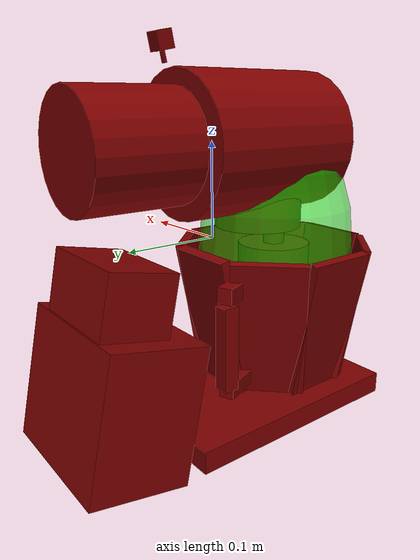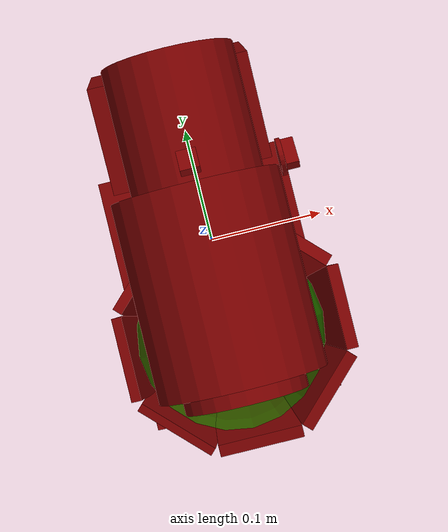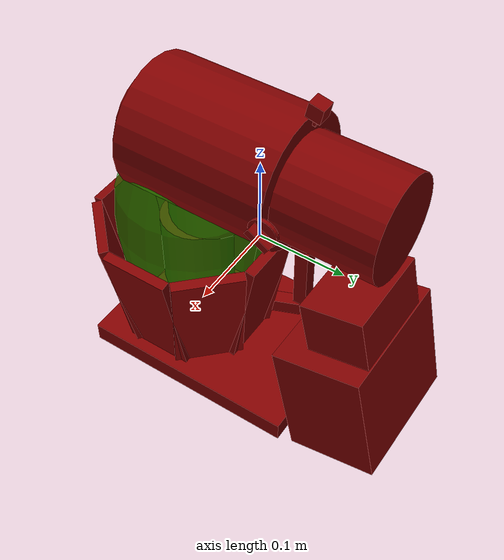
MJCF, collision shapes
<?xml version='1.0' encoding='UTF-8'?>
<mujoco model="model">
  <option timestep="0.002" gravity="0.0 0.0 -9.81"/>
  <compiler angle="radian"/>
  <asset>
    <mesh file="visuals/blender.obj" name="blender_vis"/>
    <mesh file="visuals/bowl.obj" name="bowl_vis"/>
    <mesh file="visuals/button_head_lock.obj" name="button_head_lock_vis"/>
    <mesh file="visuals/head.obj" name="head_vis"/>
    <mesh file="visuals/knob_speed.obj" name="knob_speed_vis"/>
    <mesh file="visuals/Body001.obj" name="Body001_vis"/>
    <texture file="visuals/T_BC001.png" name="Body001_material" type="2d"/>
    <material name="Body001_material" rgba="1 1 1 1.0" texture="Body001_material" shininess="0.141421377658844" specular="1"/>
    <texture file="visuals/T_BC001.png" name="bowl_material" type="2d"/>
    <material name="bowl_material" rgba="1 1 1 1.0" texture="bowl_material" shininess="0.141421377658844" specular="1"/>
    <texture file="visuals/T_BC001.png" name="head_material" type="2d"/>
    <material name="head_material" rgba="1 1 1 1.0" texture="head_material" shininess="0.141421377658844" specular="0.3103448502657381"/>
    <texture file="visuals/T_BC001.png" name="blender_material" type="2d"/>
    <material name="blender_material" rgba="1 1 1 1.0" texture="blender_material" shininess="0.141421377658844" specular="2"/>
    <texture file="visuals/T_BC001.png" name="button_head_lock_material" type="2d"/>
    <material name="button_head_lock_material" rgba="1 1 1 1.0" texture="button_head_lock_material" shininess="0.141421377658844" specular="0.3103448502657381"/>
    <texture file="visuals/T_BC001.png" name="knob_speed_material" type="2d"/>
    <material name="knob_speed_material" rgba="1 1 1 1.0" texture="knob_speed_material" shininess="0.141421377658844" specular="0.3103448502657381"/>
  </asset>
  <default>
    <default class="visual">
      <geom conaffinity="0" contype="0" group="1" type="mesh"/>
    </default>
    <default class="collision">
      <geom group="0" rgba="0.5 0 0 0.5"/>
    </default>
    <default class="spawn">
      <geom group="0" rgba="1 1 1 0.5" contype="0" conaffinity="0"/>
      <site group="0" rgba="1 1 1 0.5"/>
    </default>
    <default class="region">
      <geom group="1" conaffinity="0" contype="0" rgba="0 1 0 0"/>
    </default>
  </default>
  <worldbody>
    <body>
      <body name="object">
        <geom mesh="Body001_vis" type="mesh" solimp="0.998 0.998 0.001" solref="0.001 1" friction="0.95 0.3 0.1" class="visual" material="Body001_material"/>
        <geom type="box" pos="-0.00306752 0.12876572 -0.13562422" size="0.07723557204008102 0.05158618092536926 0.07036085426807404" quat="0.9946571588516235 0.10323340445756912 2.2922420507846902e-17 -8.876775665135218e-25" class="collision"/>
        <geom type="box" pos="-0.00376644 -0.04285419 -0.18423932" size="0.09452518075704575 0.12720628082752228 0.011588399298489094" quat="1.0 0.0 0.0 0.0" class="collision"/>
        <geom type="box" pos="-0.00306752 0.12513815 -0.05043170" size="0.05373365804553032 0.035889092832803726 0.04895084723830223" quat="0.9946571588516235 0.10323340445756912 2.2922420507846902e-17 -8.876775665135218e-25" class="collision"/>
        <body name="bowl">
          <geom mesh="bowl_vis" type="mesh" solimp="0.998 0.998 0.001" solref="0.001 1" friction="0.95 0.3 0.1" class="visual" material="bowl_material"/>
          <geom type="box" pos="0.00000000 -0.00097946 -0.09239791" size="0.039093680679798126 0.005616444628685713 0.07780883461236954" quat="0.9958149790763855 -0.09139243513345718 -0.0 0.0" class="collision"/>
          <geom type="cylinder" pos="0.00000000 -0.08901162 -0.16940770" size="0.0656556487083435 0.002657997189089656" quat="1.0 0.0 0.0 0.0" class="collision"/>
          <geom type="box" pos="0.00000000 -0.17424627 -0.09221885" size="0.039093680679798126 0.005616444628685713 0.07762673497200012" quat="0.9958149790763855 0.09139243513345718 0.0 0.0" class="collision"/>
          <geom type="box" pos="-0.08767130 -0.08759630 -0.09193143" size="0.039093680679798126 0.0046644932590425014 0.07715822011232376" quat="0.7041475176811218 0.06462422013282776 -0.06462422013282776 -0.704147458076477" class="collision"/>
          <geom type="box" pos="0.08667724 -0.08759628 -0.09207160" size="0.039093680679798126 0.005616444628685713 0.07747697830200195" quat="0.7041475176811218 -0.06462422013282776 0.06462422013282776 -0.704147458076477" class="collision"/>
          <geom type="box" pos="0.06136502 -0.14896131 -0.09149897" size="0.03909367695450783 0.005616445094347 0.07689462602138519" quat="0.3810819983482361 -0.034974388778209686 0.08443561941385269 -0.9200130105018616" class="collision"/>
          <geom type="box" pos="-0.06199156 -0.02560475 -0.09154115" size="0.03909367695450783 0.004737516865134239 0.07677482813596725" quat="0.3810819983482361 0.034974388778209686 -0.08443561941385269 -0.9200130105018616" class="collision"/>
          <geom type="box" pos="0.06133915 -0.02625711 -0.09169647" size="0.039093680679798126 0.005616445094347 0.07709547877311707" quat="0.38108187913894653 0.03497438132762909 0.08443562686443329 0.9200130701065063" class="collision"/>
          <geom type="box" pos="-0.06251123 -0.15010753 -0.09174177" size="0.039093680679798126 0.003978334367275238 0.07683831453323364" quat="0.38108187913894653 -0.03497438132762909 -0.08443562686443329 0.9200130701065063" class="collision"/>
          <geom type="box" pos="-0.05475296 0.02396617 -0.10009996" size="0.008204735815525055 0.008288691751658916 0.04507894068956375" quat="1.0 0.0 0.0 0.0" class="collision"/>
          <geom type="box" pos="-0.04540725 0.00439999 -0.14915945" size="0.008055038750171661 0.020156532526016235 0.00855184905230999" quat="0.9816450476646423 0.0 0.0 0.19071708619594574" class="collision"/>
          <geom type="box" pos="-0.05018834 0.01624000 -0.04451633" size="0.008055038750171661 0.012303204275667667 0.00855184905230999" quat="0.9816450476646423 0.0 0.0 0.19071708619594574" class="collision"/>
          <geom name="reg_bowl" type="ellipsoid" pos="-0.00347491 -0.08757693 -0.01886082" size="0.08599069714546204 0.08762931823730469 0.14500001072883606" rgba="0 1 0 0.5" class="region"/>
        </body>
        <body name="head">
          <joint axis="-1.0 0.0 0.0" pos="-0.00270844 0.14840230 0.01352860" limited="true" name="head_joint" range="0.0 1.5707963267948966" type="hinge" damping="1" frictionloss="1" armature=".01" stiffness="0.05"/>
          <geom mesh="head_vis" type="mesh" solimp="0.998 0.998 0.001" solref="0.001 1" friction="0.95 0.3 0.1" class="visual" material="head_material"/>
          <geom type="cylinder" pos="-0.00292408 -0.04066406 0.09679080" size="0.07274212688207626 0.08587756007909775" quat="0.7071067094802856 -0.7071068286895752 -1.5700929612083792e-16 -2.2148510003422914e-23" class="collision"/>
          <geom type="cylinder" pos="-0.00212719 -0.06110958 0.03108194" size="0.047373201698064804 0.02475908026099205" quat="1.9470718370939721e-07 1.0 2.220446313948109e-16 2.5145894297893258e-23" class="collision"/>
          <geom type="cylinder" pos="-0.00000000 0.10104124 0.09679078" size="0.05708102509379387 0.055062852799892426" quat="0.7071067094802856 -0.7071068286895752 -1.5700929612083792e-16 -2.2148510003422914e-23" class="collision"/>
          <geom type="cylinder" pos="-0.00292408 -0.07770088 0.09679080" size="0.05308642238378525 0.06267251819372177" quat="0.7071067094802856 -0.7071068286895752 -1.5700929612083792e-16 -2.2148510003422914e-23" class="collision"/>
          <body name="blender">
            <joint axis="0.0 0.0 1.0" pos="-0.00317745 -0.08501771 -0.05820771" limited="false" name="blender_joint" range="0 360" type="hinge" damping="1" frictionloss="1" armature=".01" stiffness="0.05"/>
            <geom mesh="blender_vis" type="mesh" solimp="0.998 0.998 0.001" solref="0.001 1" friction="0.95 0.3 0.1" class="visual" material="blender_material"/>
            <geom type="cylinder" pos="-0.00357274 -0.08542731 -0.01398453" size="0.011719915084540844 0.017287081107497215" quat="1.0 0.0 0.0 0.0" class="collision"/>
            <geom type="cylinder" pos="-0.00357274 -0.08542731 -0.06322603" size="0.04034358263015747 0.04634269326925278" quat="1.0 0.0 0.0 0.0" class="collision"/>
          </body>
          <body name="button_head_lock">
            <joint axis="0.0 0.9808801412582397 -0.1946127861738205" pos="-0.00256676 0.05552818 0.16762323" limited="true" name="button_head_lock_joint" range="0.0 0.07200000000000001" type="slide" damping="1" frictionloss="1" armature=".01" stiffness="-1.1" springref="0.079"/>
            <geom mesh="button_head_lock_vis" type="mesh" solimp="0.998 0.998 0.001" solref="0.001 1" friction="0.95 0.3 0.1" class="visual" material="button_head_lock_material"/>
            <geom type="box" pos="-0.00258075 0.05737201 0.17890153" size="0.0016758701531216502 0.0017964174039661884 0.00749154994264245" quat="0.9945454597473145 -0.10430390387773514 -3.260872367881633e-17 1.4041186170886038e-18" class="collision"/>
            <geom class="collision" type="box" pos="-0.00289395 0.05922994 0.19066946" size="0.008071699179708958 0.008177360519766808 0.00853781308978796" quat="0.9945454597473145 -0.10430390387773514 -3.260872367881633e-17 1.4041186170886038e-18" name="button_head_lock_main"/>
          </body>
          <body name="knob_speed">
            <joint axis="-1.0 0.0 0.0" pos="0.07489323 0.05176532 0.09655997" limited="true" name="knob_speed_joint" range="0.0 4.974188368183839" type="hinge" damping="0.05" armature="0.001"/>
            <geom mesh="knob_speed_vis" type="mesh" solimp="0.998 0.998 0.001" solref="0.001 1" friction="0.95 0.3 0.1" class="visual" material="knob_speed_material"/>
            <geom type="cylinder" pos="0.07318475 0.05144778 0.09648186" size="0.015975259244441986 0.002027712296694517" quat="0.49999991059303284 -0.5000000596046448 -0.5 0.5" class="collision"/>
            <geom class="collision" type="box" pos="0.08126086 0.05251081 0.09649466" size="0.005526816472411156 0.004414504859596491 0.013222548179328442" quat="0.8767880797386169 0.48087701201438904 0.0 0.0" name="knob_speed_main"/>
          </body>
        </body>
        <geom class="region" name="reg_main" type="box" pos="-0.002475000000000005 0.011101050000000001 -0.014656765000000002" size="0.096275 0.181805 0.18547807500000002"/>
      </body>
    </body>
  </worldbody>
  <actuator>
    <motor name="head_joint_actuator" joint="head_joint" gear="10"/>
    <motor name="blender_joint_actuator" joint="blender_joint" gear="10"/>
    <motor name="button_head_lock_joint_actuator" joint="button_head_lock_joint" gear="0.5"/>
    <motor name="knob_speed_joint_actuator" joint="knob_speed_joint" gear="20"/>
  </actuator>
</mujoco>
